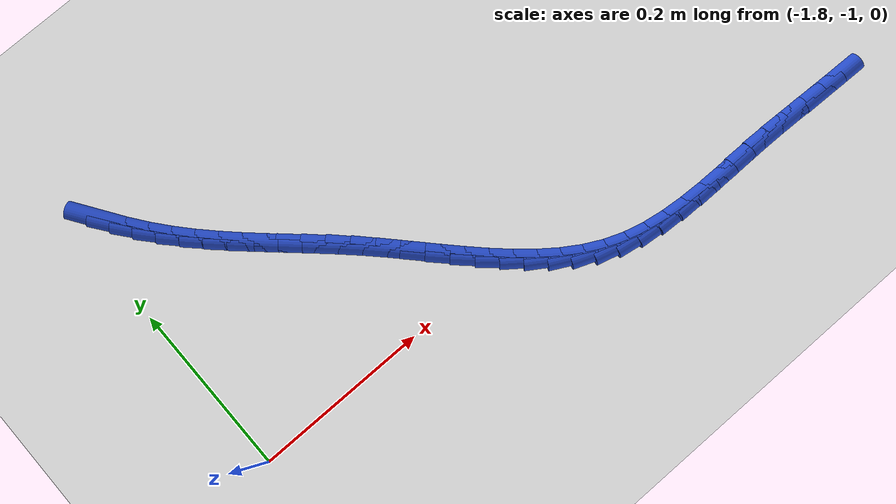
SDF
<sdf version="1.6">
 <world name="default">
  <model name="ground_plane">
   <static>1</static>
   <link name="link">
    <collision name="collision">
     <geometry><plane><normal>0 0 1</normal><size>100 100</size></plane></geometry>
     <surface><friction><ode><mu>100</mu><mu2>50</mu2></ode></friction></surface>
    </collision>
    <visual name="visual">
     <cast_shadows>0</cast_shadows>
     <geometry><plane><normal>0 0 1</normal><size>100 100</size></plane></geometry>
     <material>
      <script><uri>file://media/materials/scripts/gazebo.material</uri><name>Gazebo/WhiteGlow</name></script>
     </material>
    </visual>
   </link>
  </model>
  <model name="line">
   <link name="link_170">
    <pose>-1.7703870432442839 -0.6874919795565648 0.01 0 1.57 -0.9835224463083305</pose>
    <collision name="collision">
     <geometry><cylinder><radius>0.01</radius><length>0.08</length></cylinder></geometry>
    </collision>
    <visual name="visual">
     <material>
      <script><name>Gazebo/Blue</name><uri>file://media/materials/scripts/gazebo.material</uri></script>
     </material>
     <geometry><cylinder><radius>0.01</radius><length>0.08</length></cylinder></geometry>
    </visual>
   </link>
   <link name="link_171">
    <pose>-1.7562939106988584 -0.7086650923746809 0.01 0 1.57 -0.9377463891124908</pose>
    <collision name="collision">
     <geometry><cylinder><radius>0.01</radius><length>0.08</length></cylinder></geometry>
    </collision>
    <visual name="visual">
     <material>
      <script><name>Gazebo/Blue</name><uri>file://media/materials/scripts/gazebo.material</uri></script>
     </material>
     <geometry><cylinder><radius>0.01</radius><length>0.08</length></cylinder></geometry>
    </visual>
   </link>
   <link name="link_172">
    <pose>-1.7413209912028622 -0.7290698234109986 0.01 0 1.57 -0.8889551941763196</pose>
    <collision name="collision">
     <geometry><cylinder><radius>0.01</radius><length>0.08</length></cylinder></geometry>
    </collision>
    <visual name="visual">
     <material>
      <script><name>Gazebo/Blue</name><uri>file://media/materials/scripts/gazebo.material</uri></script>
     </material>
     <geometry><cylinder><radius>0.01</radius><length>0.08</length></cylinder></geometry>
    </visual>
   </link>
   <link name="link_173">
    <pose>-1.725432562336129 -0.7486438199316787 0.01 0 1.57 -0.8422441409761349</pose>
    <collision name="collision">
     <geometry><cylinder><radius>0.01</radius><length>0.08</length></cylinder></geometry>
    </collision>
    <visual name="visual">
     <material>
      <script><name>Gazebo/Blue</name><uri>file://media/materials/scripts/gazebo.material</uri></script>
     </material>
     <geometry><cylinder><radius>0.01</radius><length>0.08</length></cylinder></geometry>
    </visual>
   </link>
   <link name="link_174">
    <pose>-1.7086697223416623 -0.7674296376560542 0.01 0 1.57 -0.8042067533464858</pose>
    <collision name="collision">
     <geometry><cylinder><radius>0.01</radius><length>0.08</length></cylinder></geometry>
    </collision>
    <visual name="visual">
     <material>
      <script><name>Gazebo/Blue</name><uri>file://media/materials/scripts/gazebo.material</uri></script>
     </material>
     <geometry><cylinder><radius>0.01</radius><length>0.08</length></cylinder></geometry>
    </visual>
   </link>
   <link name="link_175">
    <pose>-1.6911695129498874 -0.7856008554219926 0.01 0 1.57 -0.7754619815573299</pose>
    <collision name="collision">
     <geometry><cylinder><radius>0.01</radius><length>0.08</length></cylinder></geometry>
    </collision>
    <visual name="visual">
     <material>
      <script><name>Gazebo/Blue</name><uri>file://media/materials/scripts/gazebo.material</uri></script>
     </material>
     <geometry><cylinder><radius>0.01</radius><length>0.08</length></cylinder></geometry>
    </visual>
   </link>
   <link name="link_176">
    <pose>-1.6730750149093634 -0.8033392991199827 0.01 0 1.57 -0.7560389526239376</pose>
    <collision name="collision">
     <geometry><cylinder><radius>0.01</radius><length>0.08</length></cylinder></geometry>
    </collision>
    <visual name="visual">
     <material>
      <script><name>Gazebo/Blue</name><uri>file://media/materials/scripts/gazebo.material</uri></script>
     </material>
     <geometry><cylinder><radius>0.01</radius><length>0.08</length></cylinder></geometry>
    </visual>
   </link>
   <link name="link_177">
    <pose>-1.654529308968652 -0.8208267946405092 0.01 0 1.57 -0.7458441543003287</pose>
    <collision name="collision">
     <geometry><cylinder><radius>0.01</radius><length>0.08</length></cylinder></geometry>
    </collision>
    <visual name="visual">
     <material>
      <script><name>Gazebo/Blue</name><uri>file://media/materials/scripts/gazebo.material</uri></script>
     </material>
     <geometry><cylinder><radius>0.01</radius><length>0.08</length></cylinder></geometry>
    </visual>
   </link>
   <link name="link_178">
    <pose>-1.6356754758763108 -0.8382451678740599 0.01 0 1.57 -0.7447146203481635</pose>
    <collision name="collision">
     <geometry><cylinder><radius>0.01</radius><length>0.08</length></cylinder></geometry>
    </collision>
    <visual name="visual">
     <material>
      <script><name>Gazebo/Blue</name><uri>file://media/materials/scripts/gazebo.material</uri></script>
     </material>
     <geometry><cylinder><radius>0.01</radius><length>0.08</length></cylinder></geometry>
    </visual>
   </link>
   <link name="link_179">
    <pose>-1.6166565963809014 -0.8557762447111205 0.01 0 1.57 -0.7524468239947637</pose>
    <collision name="collision">
     <geometry><cylinder><radius>0.01</radius><length>0.08</length></cylinder></geometry>
    </collision>
    <visual name="visual">
     <material>
      <script><name>Gazebo/Blue</name><uri>file://media/materials/scripts/gazebo.material</uri></script>
     </material>
     <geometry><cylinder><radius>0.01</radius><length>0.08</length></cylinder></geometry>
    </visual>
   </link>
   <link name="link_180">
    <pose>-1.5976157512309832 -0.8736018510421785 0.01 0 1.57 -0.7688026891795253</pose>
    <collision name="collision">
     <geometry><cylinder><radius>0.01</radius><length>0.08</length></cylinder></geometry>
    </collision>
    <visual name="visual">
     <material>
      <script><name>Gazebo/Blue</name><uri>file://media/materials/scripts/gazebo.material</uri></script>
     </material>
     <geometry><cylinder><radius>0.01</radius><length>0.08</length></cylinder></geometry>
    </visual>
   </link>
   <link name="link_181">
    <pose>-1.5786960211751166 -0.8919038127577195 0.01 0 1.57 -0.7921540889263583</pose>
    <collision name="collision">
     <geometry><cylinder><radius>0.01</radius><length>0.08</length></cylinder></geometry>
    </collision>
    <visual name="visual">
     <material>
      <script><name>Gazebo/Blue</name><uri>file://media/materials/scripts/gazebo.material</uri></script>
     </material>
     <geometry><cylinder><radius>0.01</radius><length>0.08</length></cylinder></geometry>
    </visual>
   </link>
   <link name="link_182">
    <pose>-1.560022620427635 -0.9108312458030341 0.01 0 1.57 -0.8098253956940247</pose>
    <collision name="collision">
     <geometry><cylinder><radius>0.01</radius><length>0.08</length></cylinder></geometry>
    </collision>
    <visual name="visual">
     <material>
      <script><name>Gazebo/Blue</name><uri>file://media/materials/scripts/gazebo.material</uri></script>
     </material>
     <geometry><cylinder><radius>0.01</radius><length>0.08</length></cylinder></geometry>
    </visual>
   </link>
   <link name="link_183">
    <pose>-1.5415529462563564 -0.9302260278502384 0.01 0 1.57 -0.8153145324165187</pose>
    <collision name="collision">
     <geometry><cylinder><radius>0.01</radius><length>0.08</length></cylinder></geometry>
    </collision>
    <visual name="visual">
     <material>
      <script><name>Gazebo/Blue</name><uri>file://media/materials/scripts/gazebo.material</uri></script>
     </material>
     <geometry><cylinder><radius>0.01</radius><length>0.08</length></cylinder></geometry>
    </visual>
   </link>
   <link name="link_184">
    <pose>-1.5231524759400334 -0.9497617499990894 0.01 0 1.57 -0.808712610435329</pose>
    <collision name="collision">
     <geometry><cylinder><radius>0.01</radius><length>0.08</length></cylinder></geometry>
    </collision>
    <visual name="visual">
     <material>
      <script><name>Gazebo/Blue</name><uri>file://media/materials/scripts/gazebo.material</uri></script>
     </material>
     <geometry><cylinder><radius>0.01</radius><length>0.08</length></cylinder></geometry>
    </visual>
   </link>
   <link name="link_185">
    <pose>-1.504685746213132 -0.9691102814064374 0.01 0 1.57 -0.7897914715843237</pose>
    <collision name="collision">
     <geometry><cylinder><radius>0.01</radius><length>0.08</length></cylinder></geometry>
    </collision>
    <visual name="visual">
     <material>
      <script><name>Gazebo/Blue</name><uri>file://media/materials/scripts/gazebo.material</uri></script>
     </material>
     <geometry><cylinder><radius>0.01</radius><length>0.08</length></cylinder></geometry>
    </visual>
   </link>
   <link name="link_186">
    <pose>-1.4860172938101213 -0.98794349122913 0.01 0 1.57 -0.7579454031540844</pose>
    <collision name="collision">
     <geometry><cylinder><radius>0.01</radius><length>0.08</length></cylinder></geometry>
    </collision>
    <visual name="visual">
     <material>
      <script><name>Gazebo/Blue</name><uri>file://media/materials/scripts/gazebo.material</uri></script>
     </material>
     <geometry><cylinder><radius>0.01</radius><length>0.08</length></cylinder></geometry>
    </visual>
   </link>
   <link name="link_187">
    <pose>-1.4670116554654682 -1.005933248624018 0.01 0 1.57 -0.7122404525933315</pose>
    <collision name="collision">
     <geometry><cylinder><radius>0.01</radius><length>0.08</length></cylinder></geometry>
    </collision>
    <visual name="visual">
     <material>
      <script><name>Gazebo/Blue</name><uri>file://media/materials/scripts/gazebo.material</uri></script>
     </material>
     <geometry><cylinder><radius>0.01</radius><length>0.08</length></cylinder></geometry>
    </visual>
   </link>
   <link name="link_188">
    <pose>-1.4475333679136415 -1.022751422747949 0.01 0 1.57 -0.6515344442287033</pose>
    <collision name="collision">
     <geometry><cylinder><radius>0.01</radius><length>0.08</length></cylinder></geometry>
    </collision>
    <visual name="visual">
     <material>
      <script><name>Gazebo/Blue</name><uri>file://media/materials/scripts/gazebo.material</uri></script>
     </material>
     <geometry><cylinder><radius>0.01</radius><length>0.08</length></cylinder></geometry>
    </visual>
   </link>
   <link name="link_189">
    <pose>-1.4274469678891089 -1.038069882757774 0.01 0 1.57 -0.5747241731129769</pose>
    <collision name="collision">
     <geometry><cylinder><radius>0.01</radius><length>0.08</length></cylinder></geometry>
    </collision>
    <visual name="visual">
     <material>
      <script><name>Gazebo/Blue</name><uri>file://media/materials/scripts/gazebo.material</uri></script>
     </material>
     <geometry><cylinder><radius>0.01</radius><length>0.08</length></cylinder></geometry>
    </visual>
   </link>
   <link name="link_190">
    <pose>-1.4066169921263383 -1.0515604978103401 0.01 0 1.57 -0.4811840199520001</pose>
    <collision name="collision">
     <geometry><cylinder><radius>0.01</radius><length>0.08</length></cylinder></geometry>
    </collision>
    <visual name="visual">
     <material>
      <script><name>Gazebo/Blue</name><uri>file://media/materials/scripts/gazebo.material</uri></script>
     </material>
     <geometry><cylinder><radius>0.01</radius><length>0.08</length></cylinder></geometry>
    </visual>
   </link>
   <link name="link_191">
    <pose>-1.3849079773597965 -1.0628951370624975 0.01 0 1.57 -0.3715029933598291</pose>
    <collision name="collision">
     <geometry><cylinder><radius>0.01</radius><length>0.08</length></cylinder></geometry>
    </collision>
    <visual name="visual">
     <material>
      <script><name>Gazebo/Blue</name><uri>file://media/materials/scripts/gazebo.material</uri></script>
     </material>
     <geometry><cylinder><radius>0.01</radius><length>0.08</length></cylinder></geometry>
    </visual>
   </link>
   <link name="link_192">
    <pose>-1.3621852972114425 -1.071747740369173 0.01 0 1.57 -0.2585883155260362</pose>
    <collision name="collision">
     <geometry><cylinder><radius>0.01</radius><length>0.08</length></cylinder></geometry>
    </collision>
    <visual name="visual">
     <material>
      <script><name>Gazebo/Blue</name><uri>file://media/materials/scripts/gazebo.material</uri></script>
     </material>
     <geometry><cylinder><radius>0.01</radius><length>0.08</length></cylinder></geometry>
    </visual>
   </link>
   <link name="link_193">
    <pose>-1.338412768593511 -1.078035824331934 0.01 0 1.57 -0.1651075938018586</pose>
    <collision name="collision">
     <geometry><cylinder><radius>0.01</radius><length>0.08</length></cylinder></geometry>
    </collision>
    <visual name="visual">
     <material>
      <script><name>Gazebo/Blue</name><uri>file://media/materials/scripts/gazebo.material</uri></script>
     </material>
     <geometry><cylinder><radius>0.01</radius><length>0.08</length></cylinder></geometry>
    </visual>
   </link>
   <link name="link_194">
    <pose>-1.3137439016019408 -1.0821462605324212 0.01 0 1.57 -0.09319369480634974</pose>
    <collision name="collision">
     <geometry><cylinder><radius>0.01</radius><length>0.08</length></cylinder></geometry>
    </collision>
    <visual name="visual">
     <material>
      <script><name>Gazebo/Blue</name><uri>file://media/materials/scripts/gazebo.material</uri></script>
     </material>
     <geometry><cylinder><radius>0.01</radius><length>0.08</length></cylinder></geometry>
    </visual>
   </link>
   <link name="link_195">
    <pose>-1.2883537932038251 -1.0845193326216014 0.01 0 1.57 -0.041462233569304736</pose>
    <collision name="collision">
     <geometry><cylinder><radius>0.01</radius><length>0.08</length></cylinder></geometry>
    </collision>
    <visual name="visual">
     <material>
      <script><name>Gazebo/Blue</name><uri>file://media/materials/scripts/gazebo.material</uri></script>
     </material>
     <geometry><cylinder><radius>0.01</radius><length>0.08</length></cylinder></geometry>
    </visual>
   </link>
   <link name="link_196">
    <pose>-1.262417540366253 -1.0855953242504421 0.01 0 1.57 -0.008331898167270797</pose>
    <collision name="collision">
     <geometry><cylinder><radius>0.01</radius><length>0.08</length></cylinder></geometry>
    </collision>
    <visual name="visual">
     <material>
      <script><name>Gazebo/Blue</name><uri>file://media/materials/scripts/gazebo.material</uri></script>
     </material>
     <geometry><cylinder><radius>0.01</radius><length>0.08</length></cylinder></geometry>
    </visual>
   </link>
   <link name="link_197">
    <pose>-1.236110240056317 -1.0858145190699104 0.01 0 1.57 0.007444924198863408</pose>
    <collision name="collision">
     <geometry><cylinder><radius>0.01</radius><length>0.08</length></cylinder></geometry>
    </collision>
    <visual name="visual">
     <material>
      <script><name>Gazebo/Blue</name><uri>file://media/materials/scripts/gazebo.material</uri></script>
     </material>
     <geometry><cylinder><radius>0.01</radius><length>0.08</length></cylinder></geometry>
    </visual>
   </link>
   <link name="link_198">
    <pose>-1.209606989241107 -1.0856172007309732 0.01 0 1.57 0.006542930442876457</pose>
    <collision name="collision">
     <geometry><cylinder><radius>0.01</radius><length>0.08</length></cylinder></geometry>
    </collision>
    <visual name="visual">
     <material>
      <script><name>Gazebo/Blue</name><uri>file://media/materials/scripts/gazebo.material</uri></script>
     </material>
     <geometry><cylinder><radius>0.01</radius><length>0.08</length></cylinder></geometry>
    </visual>
   </link>
   <link name="link_199">
    <pose>-1.1830828848877153 -1.085443652884598 0.01 0 1.57 -0.010161124436803956</pose>
    <collision name="collision">
     <geometry><cylinder><radius>0.01</radius><length>0.08</length></cylinder></geometry>
    </collision>
    <visual name="visual">
     <material>
      <script><name>Gazebo/Blue</name><uri>file://media/materials/scripts/gazebo.material</uri></script>
     </material>
     <geometry><cylinder><radius>0.01</radius><length>0.08</length></cylinder></geometry>
    </visual>
   </link>
   <link name="link_200">
    <pose>-1.1567071302966438 -1.0857116694332738 0.01 0 1.57 -0.028969675114097416</pose>
    <collision name="collision">
     <geometry><cylinder><radius>0.01</radius><length>0.08</length></cylinder></geometry>
    </collision>
    <visual name="visual">
     <material>
      <script><name>Gazebo/Blue</name><uri>file://media/materials/scripts/gazebo.material</uri></script>
     </material>
     <geometry><cylinder><radius>0.01</radius><length>0.08</length></cylinder></geometry>
    </visual>
   </link>
   <link name="link_201">
    <pose>-1.130552107948681 -1.0864695839697496 0.01 0 1.57 -0.038294273931559535</pose>
    <collision name="collision">
     <geometry><cylinder><radius>0.01</radius><length>0.08</length></cylinder></geometry>
    </collision>
    <visual name="visual">
     <material>
      <script><name>Gazebo/Blue</name><uri>file://media/materials/scripts/gazebo.material</uri></script>
     </material>
     <geometry><cylinder><radius>0.01</radius><length>0.08</length></cylinder></geometry>
    </visual>
   </link>
   <link name="link_202">
    <pose>-1.104610988998042 -1.0874634661590872 0.01 0 1.57 -0.03755713211275908</pose>
    <collision name="collision">
     <geometry><cylinder><radius>0.01</radius><length>0.08</length></cylinder></geometry>
    </collision>
    <visual name="visual">
     <material>
      <script><name>Gazebo/Blue</name><uri>file://media/materials/scripts/gazebo.material</uri></script>
     </material>
     <geometry><cylinder><radius>0.01</radius><length>0.08</length></cylinder></geometry>
    </visual>
   </link>
   <link name="link_203">
    <pose>-1.07887461738077 -1.088430505192606 0.01 0 1.57 -0.026515490222722794</pose>
    <collision name="collision">
     <geometry><cylinder><radius>0.01</radius><length>0.08</length></cylinder></geometry>
    </collision>
    <visual name="visual">
     <material>
      <script><name>Gazebo/Blue</name><uri>file://media/materials/scripts/gazebo.material</uri></script>
     </material>
     <geometry><cylinder><radius>0.01</radius><length>0.08</length></cylinder></geometry>
    </visual>
   </link>
  </model>
 </world>
</sdf>
